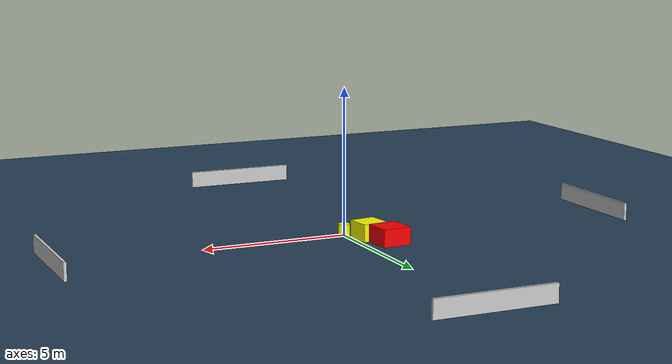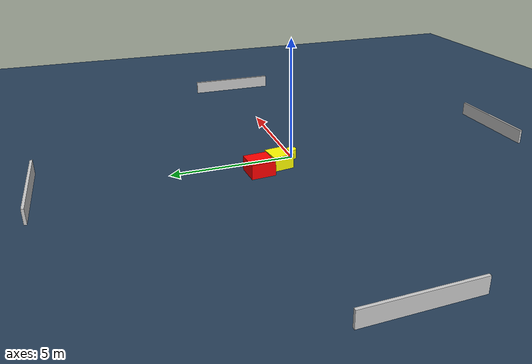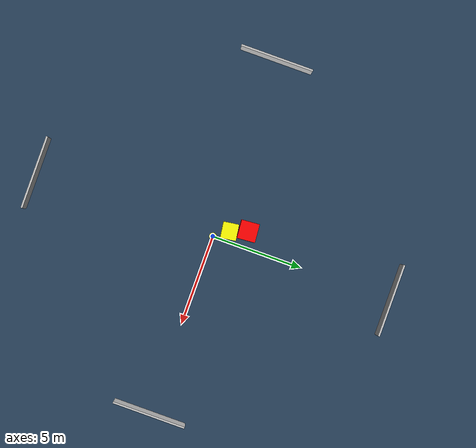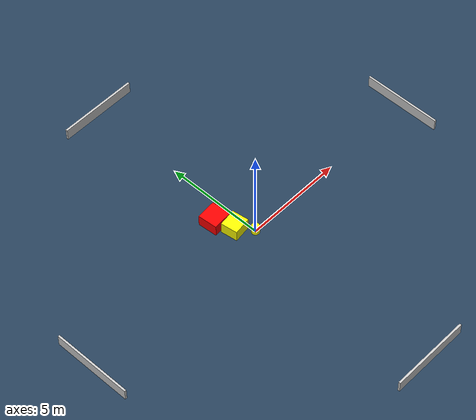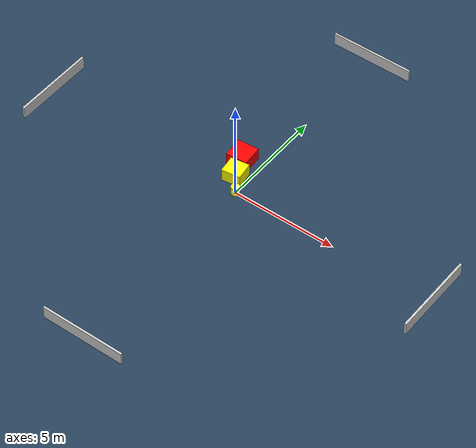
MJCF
<?xml version="1.0" ?>
<mujoco model="generated_environment">
  <option timestep="0.01" integrator="RK4" cone="elliptic"/>
  <default>
    <geom density="1"/>
  </default>
  <asset>
    <texture builtin="gradient" height="3072" name="skybox" rgb1="0.3 0.5 0.7" rgb2="0 0 0" type="skybox" width="512"/>
    <texture builtin="checker" height="300" name="groundplane" rgb1="0.2 0.3 0.4" rgb2="0.1 0.2 0.3" type="2d" width="300"/>
    <material name="groundplane" reflectance="0.2" texrepeat="5 5" texture="groundplane"/>
  </asset>
  <worldbody>
    <light dir="0 0 -1" directional="true" pos="0 0 1.5"/>
    <geom condim="3" friction="0.5 0.005 0.001" material="groundplane" name="floor" pos="0 0 0" size="0 0 0.05" type="plane"/>
    <body name="walls">
      <geom name="wall_1" condim="4" pos="-10.0 0.0 0.3" rgba="0.800000011920929 0.800000011920929 0.800000011920929 1.0" size="0.05 2.0 0.3" type="box"/>
      <geom name="wall_2" condim="4" pos="10.0 0.0 0.3" rgba="0.800000011920929 0.800000011920929 0.800000011920929 1.0" size="0.05 2.0 0.3" type="box"/>
      <geom name="wall_3" condim="4" pos="0.0 -10.0 0.3" rgba="0.800000011920929 0.800000011920929 0.800000011920929 1.0" size="2.0 0.05 0.3" type="box"/>
      <geom name="wall_4" condim="4" pos="0.0 10.0 0.3" rgba="0.800000011920929 0.800000011920929 0.800000011920929 1.0" size="2.0 0.05 0.3" type="box"/>
    </body>
    <body name="robot">
      <joint name="joint_x" type="slide" pos="0 0 0" axis="1 0 0"/>
      <joint name="joint_y" type="slide" pos="0 0 0" axis="0 1 0"/>
      <geom name="robot" type="cylinder" pos="0.0 0.0 0.2" size="0.2 0.2 0.0" mass="5.0" friction="1.0 0.005 0.0001" condim="4" rgba="1.0 1.0 0.0 1.0"/>
    </body>
    <body name="obstacle_1_movable">
      <geom name="obstacle_1_movable" condim="4" pos="-0.557346654775156 0.7356601618290047 0.3" euler="0 0 7.791739959710586" friction="0.0 0.005 0.001" rgba="1.0 1.0 0.0 1.0" size="0.4443371832913817 0.4226106542559872 0.3" type="box" mass="0.1"/>
      <joint type="free"/>
    </body>
    <body name="obstacle_2_static">
      <geom name="obstacle_2_static" condim="4" pos="-0.8908411696034553 1.659273682050963 0.3" euler="0 0 274.41628137268464" friction="0.0 0.005 0.001" rgba="1.0 0.0 0.0 1.0" size="0.4913041061584878 0.5022442754239492 0.3" type="box"/>
    </body>
  </worldbody>
  <actuator>
    <motor name="actuator_x" joint="joint_x" gear="1" ctrlrange="-1 1"/>
    <motor name="actuator_y" joint="joint_y" gear="1" ctrlrange="-1 1"/>
  </actuator>
</mujoco>
